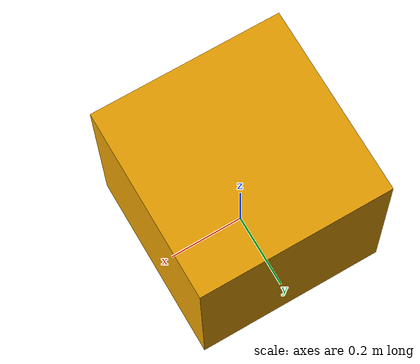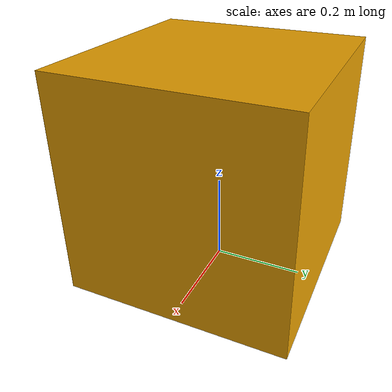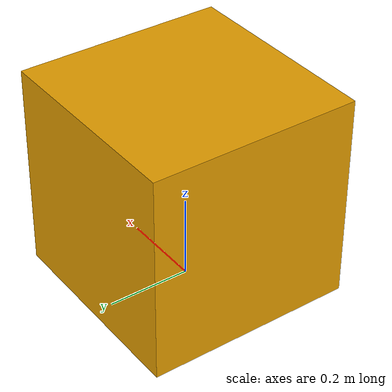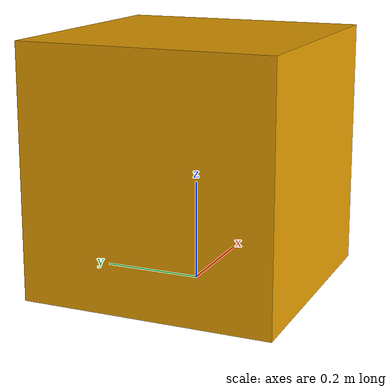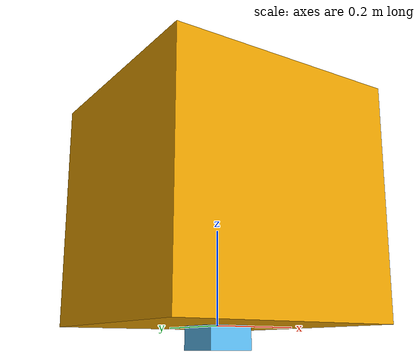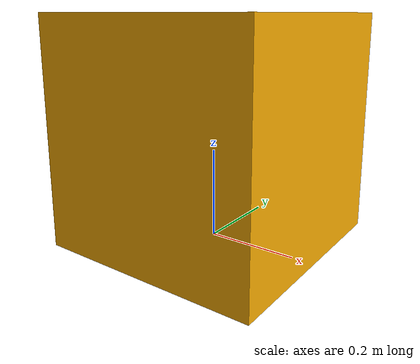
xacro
<?xml version="1.0" encoding="utf-8"?>

<robot xmlns:xacro="http://www.ros.org/wiki/xacro" name="camera_cube">

  <!-- Base Link (Physical Cube) -->
  <link name="base_link">
    <inertial>
      <origin xyz="0 0 0.25" rpy="0 0 0"/>
      <mass value="5.0"/>
      <inertia ixx="0.208" ixy="0.0" ixz="0.0" iyy="0.208" iyz="0.0" izz="0.208"/>
    </inertial>
    <visual>
      <origin xyz="0 0 0.25" rpy="0 0 0"/>
      <geometry>
        <box size="0.5 0.5 0.5"/>
      </geometry>
    </visual>
    <collision>
      <origin xyz="0 0 0.25" rpy="0 0 0"/>
      <geometry>
        <box size="0.5 0.5 0.5"/>
      </geometry>
    </collision>
  </link>

  <link name="camera_link">
    <inertial>
      <origin xyz="0 0 0" rpy="0 0 0"/>
      <mass value="0.1"/>
      <inertia ixx="0.001" ixy="0.0" ixz="0.0" iyy="0.001" iyz="0.0" izz="0.001"/>
    </inertial>
    <visual>
      <origin xyz="0 0 0" rpy="0 0 0"/>
      <geometry>
        <box size="0.1 0.1 0.1"/>
      </geometry>
    </visual>
    <collision>
      <origin xyz="0 0 0" rpy="0 0 0"/>
      <geometry>
        <box size="0.1 0.1 0.1"/>
      </geometry>
    </collision>
  </link>

  <joint name="joint_name" type="fixed">
    <origin xyz="0 0 0" rpy="0 0 0"/>
    <parent link="base_link"/>
    <child link="camera_link"/>
    <axis xyz="0 0 1"/>
  </joint>

  <!-- World-Level Systems for Physics & Sensor Engines -->
  <gazebo>
    <plugin filename="gz-sim-sensors-system" name="gz::sim::systems::Sensors">
      <render_engine>ogre2</render_engine>
    </plugin>
  </gazebo>

  <!-- Gazebo Camera Configuration on base_link -->
  <gazebo reference="base_link">
    <sensor name="cube_camera" type="camera">
      <pose>0.25 0 0.4 0 0 0</pose> <!-- Front facing, near top edge -->
      <always_on>true</always_on>
      <update_rate>30.0</update_rate>
      <visualize>true</visualize>
      <topic>/cube/camera/image_raw</topic>
      <camera name="main_cam">
        <horizontal_fov>1.211</horizontal_fov>
        <image>
          <width>640</width>
          <height>480</height>
          <format>R8G8B8</format>
        </image>
        <clip>
          <near>0.1</near>
          <far>100.0</far>
        </clip>
      </camera>
    </sensor>
  </gazebo>

  <gazebo reference="camera_link">
    <sensor name="cube_cam" type="camera">
      <pose>0.25 0 0.4 0 0 0</pose> <!-- Front facing, near top edge -->
      <always_on>true</always_on>
      <update_rate>30.0</update_rate>
      <visualize>true</visualize>
      <topic>/cube/camera_2/image_raw</topic>
      <camera_info_topic>camera/camera_info</camera_info_topic>
      <camera name="main_cam">
        <horizontal_fov>1.211</horizontal_fov>
        <image>
          <width>640</width>
          <height>480</height>
          <format>R8G8B8</format>
        </image>
        <clip>
          <near>0.1</near>
          <far>100.0</far>
        </clip>
      </camera>
    </sensor>
  </gazebo>

</robot>
